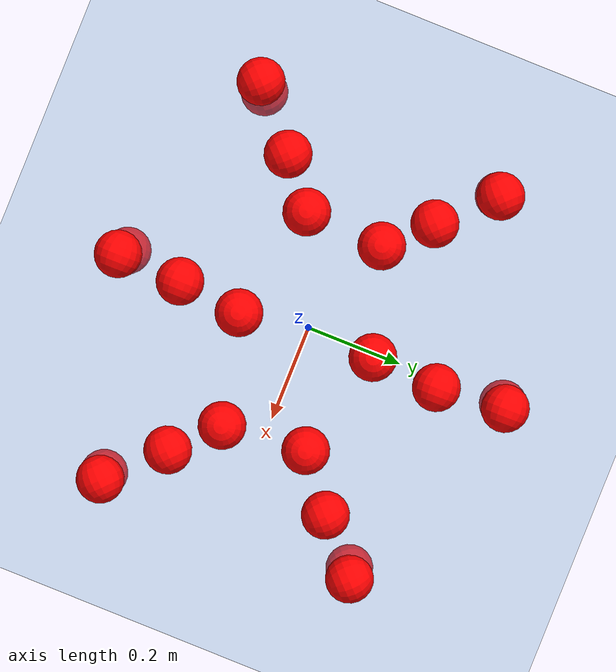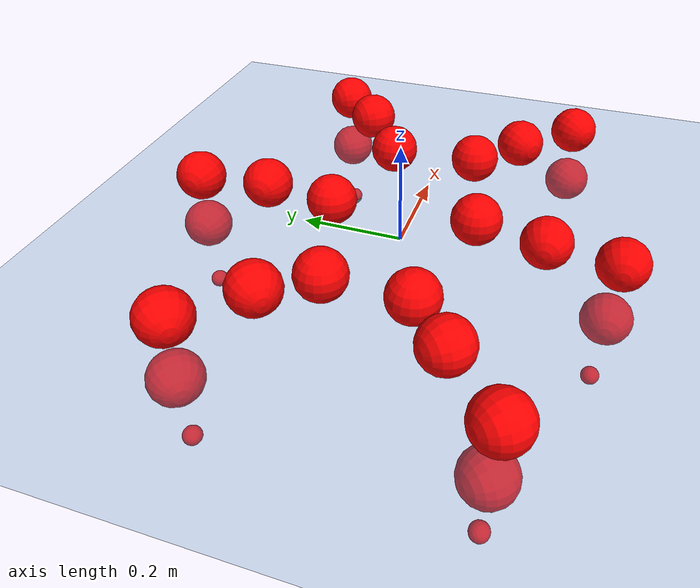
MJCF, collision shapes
<mujoco model="Golem">
  <compiler angle="radian" assetdir="assets" balanceinertia="true" inertiafromgeom="false"/>

  <option timestep="0.005" density="1.2" viscosity="2e-05"/>

  <size nkey="1"/>

  <visual>
    <quality shadowsize="8192"/>
    <map shadowclip="0.5"/>
  </visual>

  <default>
    <default class="/">
      <joint armature="0.01" damping="0.01" frictionloss="0.01"/>
      <geom contype="0" conaffinity="0" group="1" solref="-1000 -80"/>
      <site size="0.01 0.005 0.005" group="5"/>
      <general forcelimited="true" biastype="affine" gainprm="25" biasprm="0 -25 -0.5"/>
      <default class="visual">
        <geom type="mesh" group="2"/>
      </default>
      <default class="collision">
        <geom group="3"/>
      </default>
      <default class="foot">
        <geom size="0.01 0 0" condim="6" group="4" priority="1" solimp="0.015 1 0.01"/>
      </default>
      <default class="reward_collision_sphere">
        <geom group="5" rgba="1 0 0 1"/>
      </default>
    </default>
  </default>

  <asset>
    <texture type="skybox" colorspace="auto" name="//unnamed_texture_0" builtin="gradient" rgb1="0.95 0.95 0.95" rgb2="0.95 0.95 0.95" width="100" height="600"/>
    <texture type="2d" colorspace="auto" name="texplane" builtin="checker" rgb1="0.345 0.575 0.748" rgb2="0.345 0.575 0.748" markrgb="1 1 1" width="512" height="512"/>
    <material name="MatPlane" class="/" texture="texplane" texuniform="true" texrepeat="2 2" specular="0.9"/>
    <mesh name="body" class="/" file="body.stl" scale="0.001 0.001 0.001"/>
    <mesh name="coxa" class="/" file="coxa.stl" scale="0.001 0.001 0.001"/>
    <mesh name="femur" class="/" file="femur.stl" scale="0.001 0.001 0.001"/>
    <mesh name="tibia" class="/" file="tibia.stl" scale="0.001 0.001 0.001"/>
    <mesh name="tarsus" class="/" file="tarsus.stl" scale="0.001 0.001 0.001"/>
  </asset>

  <worldbody>
    <geom name="floor" class="/" size="100 100 0.125" type="plane" group="0" material="MatPlane"/>
    <light name="toplight_shadow" class="/" pos="0 0 5" dir="0.0990148 0.0990148 -0.990148" type="directional" ambient="0.04 0.04 0.04" diffuse="0.55 0.55 0.55" specular="0.12 0.12 0.12"/>
    <light name="toplight_fill" class="/" pos="0 0 5" dir="0.0990148 0.0990148 -0.990148" type="directional" castshadow="false" ambient="0.04 0.04 0.04" diffuse="0.3 0.3 0.3" specular="0.08 0.08 0.08"/>
    <body name="trunk" pos="0.0102276 0.00104221 -0.000330906" quat="0.999977 0.000482257 0.00642699 0.00221997">
      <inertial pos="0.00299128 -0.0147985 -0.0135426" quat="0.999196 -0.0103476 0.038722 -0.000940305" mass="7.3184" diaginertia="0.0659666 0.036225 0.00838898"/>
      <joint name="//unnamed_joint_0" type="free"/>
      <geom name="//unnamed_geom_1" class="/" pos="0 0 0.0605919" quat="1 0 0 0" type="mesh" rgba="0.9 0.9 0.9 1" mesh="body"/>
      <site name="imu" class="/" pos="0.182267 -0.0584385 0.131575" size="0.0122639"/>
      <camera name="track" class="/" pos="0 -2.60829 0" quat="0.707107 0.707107 0 0" mode="trackcom"/>
      <camera name="ego_camera" class="/" pos="0.185676 0 0.0946748" quat="-0.5 -0.5 0.5 0.5"/>
      <body name="coxa_RR" pos="-0.255076 -0.120241 0.0566581" quat="0.386531 0.00336699 0.0029222 -0.922265">
        <inertial pos="-0.00908758 -0.00651474 -0.0069397" quat="0.997178 0.00272967 0.0420383 -0.0621441" mass="0.254235" diaginertia="0.0490883 0.0294885 0.00676015"/>
        <joint name="coxa_joint_RR" class="/" pos="0 0 0" axis="-0.00147835 0.0044762 -0.999989" range="-3.14584 3.43692" armature="0.00330474" damping="0" frictionloss="0.0114896"/>
        <geom name="//unnamed_geom_2" class="/" type="mesh" rgba="0.2 0.2 0.2 1" mesh="coxa"/>
        <geom name="//unnamed_geom_3" class="reward_collision_sphere" size="0.0490556" pos="-0.0428484 0 0"/>
        <body name="femur_RR" pos="0.078291 -0.0125369 0.00653054" quat="0.503513 -0.498826 0.497686 0.499956">
          <inertial pos="-0.0130497 -0.00637397 -0.000450745" quat="0.99801 -0.0456909 -0.0236818 0.0364221" mass="0.384688" diaginertia="0.0610253 0.038911 0.00767651"/>
          <joint name="femur_joint_RR" class="/" pos="0 0 0" axis="-0.00543677 -0.00339676 -0.999979" range="-3.30572 3.31592" armature="0.0113863" damping="0.071144" frictionloss="0.00838328"/>
          <geom name="//unnamed_geom_4" class="/" type="mesh" rgba="0.9 0.9 0.9 1" mesh="femur"/>
          <geom name="//unnamed_geom_5" class="reward_collision_sphere" size="0.0490556"/>
          <body name="tibia_RR" pos="-0.00377643 -0.154869 -0.00881809" quat="0.00267598 0.999992 -0.000168545 -0.00281611">
            <inertial pos="0.0104961 -0.00119432 -0.000630032" quat="0.999475 -0.00847582 0.0310422 -0.00368293" mass="0.302811" diaginertia="0.0553846 0.038509 0.00664914"/>
            <joint name="tibia_joint_RR" class="/" pos="0 0 0" axis="-0.0355619 -0.0451884 0.998345" range="-3.01875 3.12913" armature="0.0131706" damping="0.019704" frictionloss="0.0125912"/>
            <geom name="//unnamed_geom_6" class="/" type="mesh" rgba="0.2 0.2 0.2 1" mesh="tibia"/>
            <geom name="//unnamed_geom_7" class="reward_collision_sphere" size="0.0490556"/>
            <body name="tarsus_RR" pos="0.137046 -0.00969539 -0.000274625" quat="0.999991 0.00336086 0.0022249 -0.0014809">
              <inertial pos="0.0876846 0.00245713 0.00648434" quat="0.499691 0.499601 0.496757 0.503924" mass="0.30993" diaginertia="0.051358 0.0317465 0.00633126"/>
              <joint name="tarsus_joint_RR" class="/" pos="0 0 0" axis="0.00594615 0.01258 0.999903" range="-3.15689 3.14769" armature="0.011226" damping="0.0199898" frictionloss="0.0190679"/>
              <geom name="//unnamed_geom_8" class="/" type="mesh" rgba="0.9 0.9 0.9 1" mesh="tarsus"/>
              <geom name="foot_1" class="foot" size="0.0130625" pos="0.159967 0 0" quat="0 -0.707107 0 0.707107"/>
              <geom name="//unnamed_geom_10" class="reward_collision_sphere" size="0.0490556"/>
              <geom name="//unnamed_geom_11" class="reward_collision_sphere" size="0.0183959" pos="0.15354 0 0"/>
              <site name="foot_1" class="foot" pos="0.159967 0 0" quat="0 -0.707107 0 0.707107" size="0.0122639"/>
            </body>
          </body>
        </body>
      </body>
      <body name="coxa_RM" pos="0.0130718 -0.18444 0.0607763" quat="0.705415 0.000606522 -0.000963875 -0.708793">
        <inertial pos="0.0126737 -0.000233912 0.00336053" quat="0.999997 -0.00223213 -0.000926321 -0.000747263" mass="0.313481" diaginertia="0.0540687 0.0286768 0.00638233"/>
        <joint name="coxa_joint_RM" class="/" pos="0 0 0" axis="-0.0021069 0.00195194 -0.999996" range="-3.35855 3.1136" armature="0.00560746" damping="0" frictionloss="0.0118771"/>
        <geom name="//unnamed_geom_12" class="/" type="mesh" rgba="0.2 0.2 0.2 1" mesh="coxa"/>
        <geom name="//unnamed_geom_13" class="reward_collision_sphere" size="0.0490556" pos="-0.0428484 0 0"/>
        <body name="femur_RM" pos="0.0913013 -0.0142636 -0.0125206" quat="0.497634 -0.502292 0.501666 0.498392">
          <inertial pos="-0.00151096 0.00801079 -0.0058457" quat="0.997455 0.0120284 0.0648578 -0.027068" mass="0.400108" diaginertia="0.076737 0.0447484 0.00944237"/>
          <joint name="femur_joint_RM" class="/" pos="0 0 0" axis="0.00229631 0.0072124 -0.999971" range="-2.84817 3.22513" armature="0.0122598" damping="0" frictionloss="0.0120142"/>
          <geom name="//unnamed_geom_14" class="/" type="mesh" rgba="0.9 0.9 0.9 1" mesh="femur"/>
          <geom name="//unnamed_geom_15" class="reward_collision_sphere" size="0.0490556"/>
          <body name="tibia_RM" pos="0.0124324 -0.137384 -0.0046297" quat="0.00282411 0.999973 0.0027653 -0.00624593">
            <inertial pos="0.00986889 -0.000586872 0.00410491" quat="0.99858 -0.0423094 -0.0231563 0.0226292" mass="0.36476" diaginertia="0.060277 0.0444029 0.00914809"/>
            <joint name="tibia_joint_RM" class="/" pos="0 0 0" axis="0.00386382 -0.0226073 0.999737" stiffness="0.065249" range="-3.12954 3.15865" armature="0.0134738" damping="0.0535477" frictionloss="0.014793"/>
            <geom name="//unnamed_geom_16" class="/" type="mesh" rgba="0.2 0.2 0.2 1" mesh="tibia"/>
            <geom name="//unnamed_geom_17" class="reward_collision_sphere" size="0.0490556"/>
            <body name="tarsus_RM" pos="0.122508 -0.00511478 0.0107312" quat="0.99998 0.00432971 -0.00204972 -0.00418097">
              <inertial pos="0.084972 -0.00248089 -0.000235896" quat="0.476887 0.503818 0.507882 0.510688" mass="0.373955" diaginertia="0.0579985 0.0382869 0.00627606"/>
              <joint name="tarsus_joint_RM" class="/" pos="0 0 0" axis="-0.0481104 -0.0353608 0.998216" range="-2.94327 2.84436" armature="0.0176808" damping="0.00468285" frictionloss="0.0212898"/>
              <geom name="//unnamed_geom_18" class="/" type="mesh" rgba="0.9 0.9 0.9 1" mesh="tarsus"/>
              <geom name="foot_2" class="foot" size="0.0101319" pos="0.159967 0 0" quat="0 -0.707107 0 0.707107"/>
              <geom name="//unnamed_geom_20" class="reward_collision_sphere" size="0.0490556"/>
              <geom name="//unnamed_geom_21" class="reward_collision_sphere" size="0.0183959" pos="0.15354 0 0"/>
              <site name="foot_2" class="foot" pos="0.159967 0 0" quat="0 -0.707107 0 0.707107" size="0.0122639"/>
            </body>
          </body>
        </body>
      </body>
      <body name="coxa_RF" pos="0.266979 -0.11978 0.0597558" quat="0.925559 -0.00448203 0.000231101 -0.378578">
        <inertial pos="-0.0130167 -0.0133129 -0.00110817" quat="1 6.69922e-05 -0.000396278 0.000835209" mass="0.363111" diaginertia="0.0631038 0.0426067 0.00778292"/>
        <joint name="coxa_joint_RF" class="/" pos="0 0 0" axis="0.00278003 -0.0327806 -0.999459" stiffness="0.0728925" range="-3.28117 3.40661" armature="0.01612" damping="0" frictionloss="0.0111517"/>
        <geom name="//unnamed_geom_22" class="/" type="mesh" rgba="0.2 0.2 0.2 1" mesh="coxa"/>
        <geom name="//unnamed_geom_23" class="reward_collision_sphere" size="0.0490556" pos="-0.0428484 0 0"/>
        <body name="femur_RF" pos="0.0764744 0.000762566 0.00507328" quat="0.495574 -0.503633 0.501913 0.498842">
          <inertial pos="-2.84379e-05 0.00837701 -0.0142287" quat="0.998231 -0.0128684 -0.0541489 -0.0209207" mass="0.384229" diaginertia="0.0687717 0.0442392 0.0104314"/>
          <joint name="femur_joint_RF" class="/" pos="0 0 0" axis="-0.06273 -0.0365782 -0.99736" range="-3.11321 3.30319" armature="0.00253841" damping="0.0084442" frictionloss="0.00572543"/>
          <geom name="//unnamed_geom_24" class="/" type="mesh" rgba="0.9 0.9 0.9 1" mesh="femur"/>
          <geom name="//unnamed_geom_25" class="reward_collision_sphere" size="0.0490556"/>
          <body name="tibia_RF" pos="0.00352449 -0.148293 -0.00182368" quat="0.00205471 0.999992 -0.0032746 -0.000274595">
            <inertial pos="-0.00235851 -0.000511185 -0.000583007" quat="0.998494 -0.0101936 0.0277959 0.0461772" mass="0.435413" diaginertia="0.0655078 0.0432176 0.00702656"/>
            <joint name="tibia_joint_RF" class="/" pos="0 0 0" axis="0.0122287 -0.0095541 0.99988" stiffness="0.0434419" range="-3.14982 2.87219" armature="0.0109909" damping="0.0185894" frictionloss="0.00893401"/>
            <geom name="//unnamed_geom_26" class="/" type="mesh" rgba="0.2 0.2 0.2 1" mesh="tibia"/>
            <geom name="//unnamed_geom_27" class="reward_collision_sphere" size="0.0490556"/>
            <body name="tarsus_RF" pos="0.126345 0.00020213 0.00238089" quat="0.999974 -0.00258016 -0.00401256 -0.00539642">
              <inertial pos="0.0905531 0.000146618 -0.00149688" quat="0.483901 0.477859 0.499114 0.537006" mass="0.415701" diaginertia="0.0668744 0.0421494 0.00975724"/>
              <joint name="tarsus_joint_RF" class="/" pos="0 0 0" axis="0.00486696 0.0236559 0.999708" range="-3.14375 3.149" armature="0.0125023" damping="0.00869634" frictionloss="0.00687626"/>
              <geom name="//unnamed_geom_28" class="/" type="mesh" rgba="0.9 0.9 0.9 1" mesh="tarsus"/>
              <geom name="foot_3" class="foot" size="0.00660106" pos="0.159967 0 0" quat="0 -0.707107 0 0.707107"/>
              <geom name="//unnamed_geom_30" class="reward_collision_sphere" size="0.0490556"/>
              <geom name="//unnamed_geom_31" class="reward_collision_sphere" size="0.0183959" pos="0.15354 0 0"/>
              <site name="foot_3" class="foot" pos="0.159967 0 0" quat="0 -0.707107 0 0.707107" size="0.0122639"/>
            </body>
          </body>
        </body>
      </body>
      <body name="coxa_LR" pos="-0.247359 0.105972 0.0551101" quat="0.385679 0.00522771 -0.000179106 0.922618">
        <inertial pos="0.000512245 -9.31224e-05 -0.00516638" quat="0.999998 -0.000406239 0.00166928 0.00131002" mass="0.40285" diaginertia="0.0686112 0.0369007 0.00902842"/>
        <joint name="coxa_joint_LR" class="/" pos="0 0 0" axis="0.014185 -0.0591117 -0.998151" stiffness="0.0314052" range="-3.37001 3.13567" armature="0.0162526" damping="0" frictionloss="0.0126986"/>
        <geom name="//unnamed_geom_32" class="/" type="mesh" rgba="0.2 0.2 0.2 1" mesh="coxa"/>
        <geom name="//unnamed_geom_33" class="reward_collision_sphere" size="0.0490556" pos="-0.0428484 0 0"/>
        <body name="femur_LR" pos="0.0718501 -0.000739871 0.013054" quat="0.498953 -0.501201 0.501702 0.498135">
          <inertial pos="-0.000632267 0.00204468 -0.00742691" quat="0.999499 0.0180891 0.0236396 0.0107942" mass="0.341127" diaginertia="0.0535596 0.0412824 0.00673958"/>
          <joint name="femur_joint_LR" class="/" pos="0 0 0" axis="0.0100234 -0.00881547 0.999911" stiffness="0.0492516" range="-2.88515 2.88902" armature="0.0109861" damping="0.0704897" frictionloss="0.0151925"/>
          <geom name="//unnamed_geom_34" class="/" type="mesh" rgba="0.9 0.9 0.9 1" mesh="femur"/>
          <geom name="//unnamed_geom_35" class="reward_collision_sphere" size="0.0490556"/>
          <body name="tibia_LR" pos="0.0034773 -0.143085 -0.000330015" quat="0.00141107 0.999997 0.00140537 -0.0010768">
            <inertial pos="0.0146294 0.00494482 0.0132468" quat="0.999937 0.00193035 -0.00890764 -0.00649432" mass="0.36798" diaginertia="0.0616186 0.032905 0.00873179"/>
            <joint name="tibia_joint_LR" class="/" pos="0 0 0" axis="-1.6375e-05 2.09008e-05 -1" stiffness="0.0449544" range="-3.40371 2.92163" armature="0.01723" damping="0" frictionloss="0.0157699"/>
            <geom name="//unnamed_geom_36" class="/" type="mesh" rgba="0.2 0.2 0.2 1" mesh="tibia"/>
            <geom name="//unnamed_geom_37" class="reward_collision_sphere" size="0.0490556"/>
            <body name="tarsus_LR" pos="0.130681 0.00728718 -0.00469245" quat="1 0.000318447 0.000216813 -0.000402619">
              <inertial pos="0.0823138 0.00189342 -0.00462787" quat="0.498818 0.500343 0.500881 0.499955" mass="0.338198" diaginertia="0.0552098 0.0280257 0.00638902"/>
              <joint name="tarsus_joint_LR" class="/" pos="0 0 0" axis="0.06683 -0.00772673 -0.997734" range="-3.09182 3.35517" armature="0.0142901" damping="0.0281879" frictionloss="0.0056877"/>
              <geom name="//unnamed_geom_38" class="/" type="mesh" rgba="0.9 0.9 0.9 1" mesh="tarsus"/>
              <geom name="foot_4" class="foot" size="0.0100112" pos="0.159967 0 0" quat="0.707107 0 -0.707107 0"/>
              <geom name="//unnamed_geom_40" class="reward_collision_sphere" size="0.0490556"/>
              <geom name="//unnamed_geom_41" class="reward_collision_sphere" size="0.0183959" pos="0.15354 0 0"/>
              <site name="foot_4" class="foot" pos="0.159967 0 0" quat="0.707107 0 -0.707107 0" size="0.0122639"/>
            </body>
          </body>
        </body>
      </body>
      <body name="coxa_LM" pos="-0.00241519 0.184391 0.0576562" quat="0.705807 -0.00132969 0.00257432 0.708398">
        <inertial pos="-0.0131627 -0.0143638 -0.00521143" quat="0.999998 0.000535662 0.00160235 -0.00108996" mass="0.364938" diaginertia="0.0550281 0.0369566 0.00737279"/>
        <joint name="coxa_joint_LM" class="/" pos="0 0 0" axis="-0.0124488 -0.0125017 -0.999844" stiffness="0.0536121" range="-3.31592 3.31677" armature="0.00457619" damping="0.0295036" frictionloss="0.00701004"/>
        <geom name="//unnamed_geom_42" class="/" type="mesh" rgba="0.2 0.2 0.2 1" mesh="coxa"/>
        <geom name="//unnamed_geom_43" class="reward_collision_sphere" size="0.0490556" pos="-0.0428484 0 0"/>
        <body name="femur_LM" pos="0.0975661 -0.00950592 0.00643875" quat="0.501802 -0.501175 0.494019 0.502955">
          <inertial pos="0.00949834 -0.00850292 0.00271003" quat="0.998525 0.00316674 -0.0500249 0.0208578" mass="0.351186" diaginertia="0.0486998 0.0400249 0.00684811"/>
          <joint name="femur_joint_LM" class="/" pos="0 0 0" axis="-0.0163153 -0.0175976 0.999712" range="-3.2637 3.12729" armature="0.0209351" damping="0.0346061" frictionloss="0.0117681"/>
          <geom name="//unnamed_geom_44" class="/" type="mesh" rgba="0.9 0.9 0.9 1" mesh="femur"/>
          <geom name="//unnamed_geom_45" class="reward_collision_sphere" size="0.0490556"/>
          <body name="tibia_LM" pos="0.00276029 -0.1441 0.0102739" quat="-0.000146177 1 0.000221223 -0.000176557">
            <inertial pos="-0.00509605 -0.0124091 -0.00735438" quat="0.999626 -0.00965406 -0.0223442 0.0124329" mass="0.386818" diaginertia="0.0680631 0.0357703 0.00697888"/>
            <joint name="tibia_joint_LM" class="/" pos="0 0 0" axis="0.0420575 0.0141971 -0.999014" stiffness="0.0222679" range="-3.02748 2.93331" armature="0.0107988" damping="0.0510702" frictionloss="0.0176738"/>
            <geom name="//unnamed_geom_46" class="/" type="mesh" rgba="0.2 0.2 0.2 1" mesh="tibia"/>
            <geom name="//unnamed_geom_47" class="reward_collision_sphere" size="0.0490556"/>
            <body name="tarsus_LM" pos="0.11546 0.00209311 -0.00507284" quat="1 0.000226472 0.000581955 -0.000155785">
              <inertial pos="0.0883461 0.00143457 -0.000422511" quat="0.526171 0.510881 0.476281 0.485079" mass="0.25517" diaginertia="0.0456267 0.0312455 0.00739698"/>
              <joint name="tarsus_joint_LM" class="/" pos="0 0 0" axis="0.0194689 -0.0275208 -0.999432" range="-3.14675 3.33427" armature="0.0114888" damping="0" frictionloss="0.0120414"/>
              <geom name="//unnamed_geom_48" class="/" type="mesh" rgba="0.9 0.9 0.9 1" mesh="tarsus"/>
              <geom name="foot_5" class="foot" size="0.00981888" pos="0.159967 0 0" quat="0.707107 0 -0.707107 0"/>
              <geom name="//unnamed_geom_50" class="reward_collision_sphere" size="0.0490556"/>
              <geom name="//unnamed_geom_51" class="reward_collision_sphere" size="0.0183959" pos="0.15354 0 0"/>
              <site name="foot_5" class="foot" pos="0.159967 0 0" quat="0.707107 0 -0.707107 0" size="0.0122639"/>
            </body>
          </body>
        </body>
      </body>
      <body name="coxa_LF" pos="0.251701 0.115383 0.0606249" quat="0.923852 -3.2056e-05 -0.000390659 0.382749">
        <inertial pos="0.00159499 -0.00411646 -0.000135404" quat="0.999999 -0.000649543 0.000985671 0.00118958" mass="0.438205" diaginertia="0.0692779 0.0387109 0.00792908"/>
        <joint name="coxa_joint_LF" class="/" pos="0 0 0" axis="-0.0560965 -0.0377735 -0.997711" range="-3.16005 3.27907" armature="0.00864081" damping="0.0258887" frictionloss="0.0117337"/>
        <geom name="//unnamed_geom_52" class="/" type="mesh" rgba="0.2 0.2 0.2 1" mesh="coxa"/>
        <geom name="//unnamed_geom_53" class="reward_collision_sphere" size="0.0490556" pos="-0.0428484 0 0"/>
        <body name="femur_LF" pos="0.0906074 -0.01448 0.0149847" quat="0.5007 -0.499133 0.498992 0.501171">
          <inertial pos="0.0119389 -0.00699922 0.00439669" quat="1 -0.000770155 -0.000327202 -0.000164595" mass="0.354217" diaginertia="0.068289 0.0473454 0.00836381"/>
          <joint name="femur_joint_LF" class="/" pos="0 0 0" axis="-0.0486758 -0.0319951 0.998302" range="-3.11829 3.39534" armature="0.0190625" damping="0.000877752" frictionloss="0.0101342"/>
          <geom name="//unnamed_geom_54" class="/" type="mesh" rgba="0.9 0.9 0.9 1" mesh="femur"/>
          <geom name="//unnamed_geom_55" class="reward_collision_sphere" size="0.0490556"/>
          <body name="tibia_LF" pos="0.0132318 -0.138321 -0.00716117" quat="-0.00181553 0.999997 -0.00123819 0.000422418">
            <inertial pos="-0.00502002 -0.00732311 -0.00218751" quat="0.99791 0.00556781 -0.0630893 -0.0128476" mass="0.37909" diaginertia="0.0596781 0.0351346 0.00697399"/>
            <joint name="tibia_joint_LF" class="/" pos="0 0 0" axis="-0.00726964 -0.00407358 -0.999965" stiffness="0.000733008" range="-3.12838 3.29928" armature="0.0214279" damping="0.0156978" frictionloss="0.0115505"/>
            <geom name="//unnamed_geom_56" class="/" type="mesh" rgba="0.2 0.2 0.2 1" mesh="tibia"/>
            <geom name="//unnamed_geom_57" class="reward_collision_sphere" size="0.0490556"/>
            <body name="tarsus_LF" pos="0.126639 -0.0074568 -0.00412433" quat="0.999973 -0.00626579 -0.00382658 0.000509171">
              <inertial pos="0.0748201 0.0124607 -0.000596767" quat="0.500455 0.498968 0.49963 0.500945" mass="0.416183" diaginertia="0.0713747 0.0431672 0.00893627"/>
              <joint name="tarsus_joint_LF" class="/" pos="0 0 0" axis="0.0160166 -0.0597014 -0.998088" range="-3.38021 3.1079" armature="0.0109029" damping="0" frictionloss="0.0120289"/>
              <geom name="//unnamed_geom_58" class="/" type="mesh" rgba="0.9 0.9 0.9 1" mesh="tarsus"/>
              <geom name="foot_6" class="foot" size="0.0172972" pos="0.159967 0 0" quat="0.707107 0 -0.707107 0"/>
              <geom name="//unnamed_geom_60" class="reward_collision_sphere" size="0.0490556"/>
              <geom name="//unnamed_geom_61" class="reward_collision_sphere" size="0.0183959" pos="0.15354 0 0"/>
              <site name="foot_6" class="foot" pos="0.159967 0 0" quat="0.707107 0 -0.707107 0" size="0.0122639"/>
            </body>
          </body>
        </body>
      </body>
    </body>
  </worldbody>

  <contact>
    <pair class="/" geom1="floor" geom2="foot_1" name="//unnamed_contact_0"/>
    <pair class="/" geom1="floor" geom2="foot_2" name="//unnamed_contact_1"/>
    <pair class="/" geom1="floor" geom2="foot_3" name="//unnamed_contact_2"/>
    <pair class="/" geom1="floor" geom2="foot_4" name="//unnamed_contact_3"/>
    <pair class="/" geom1="floor" geom2="foot_5" name="//unnamed_contact_4"/>
    <pair class="/" geom1="floor" geom2="foot_6" name="//unnamed_contact_5"/>
  </contact>

  <actuator>
    <general name="coxa_joint_RR" class="/" joint="coxa_joint_RR" forcerange="-8.53917 8.53917" gainprm="23.5407" biasprm="0 -23.5407 -0.726661"/>
    <general name="femur_joint_RR" class="/" joint="femur_joint_RR" forcerange="-8.94189 8.94189" gainprm="23.5407" biasprm="0 -23.5407 -0.726661"/>
    <general name="tibia_joint_RR" class="/" joint="tibia_joint_RR" forcerange="-8.92204 8.92204" gainprm="23.5407" biasprm="0 -23.5407 -0.726661"/>
    <general name="tarsus_joint_RR" class="/" joint="tarsus_joint_RR" forcerange="-10.4086 10.4086" gainprm="23.5407" biasprm="0 -23.5407 -0.726661"/>
    <general name="coxa_joint_RM" class="/" joint="coxa_joint_RM" forcerange="-10.567 10.567" gainprm="23.5407" biasprm="0 -23.5407 -0.726661"/>
    <general name="femur_joint_RM" class="/" joint="femur_joint_RM" forcerange="-12.6144 12.6144" gainprm="23.5407" biasprm="0 -23.5407 -0.726661"/>
    <general name="tibia_joint_RM" class="/" joint="tibia_joint_RM" forcerange="-9.13503 9.13503" gainprm="23.5407" biasprm="0 -23.5407 -0.726661"/>
    <general name="tarsus_joint_RM" class="/" joint="tarsus_joint_RM" forcerange="-7.09421 7.09421" gainprm="23.5407" biasprm="0 -23.5407 -0.726661"/>
    <general name="coxa_joint_RF" class="/" joint="coxa_joint_RF" forcerange="-12.8084 12.8084" gainprm="23.5407" biasprm="0 -23.5407 -0.726661"/>
    <general name="femur_joint_RF" class="/" joint="femur_joint_RF" forcerange="-12.4491 12.4491" gainprm="23.5407" biasprm="0 -23.5407 -0.726661"/>
    <general name="tibia_joint_RF" class="/" joint="tibia_joint_RF" forcerange="-5.60506 5.60506" gainprm="23.5407" biasprm="0 -23.5407 -0.726661"/>
    <general name="tarsus_joint_RF" class="/" joint="tarsus_joint_RF" forcerange="-6.73464 6.73464" gainprm="23.5407" biasprm="0 -23.5407 -0.726661"/>
    <general name="coxa_joint_LR" class="/" joint="coxa_joint_LR" forcerange="-9.4819 9.4819" gainprm="23.5407" biasprm="0 -23.5407 -0.726661"/>
    <general name="femur_joint_LR" class="/" joint="femur_joint_LR" forcerange="-11.6004 11.6004" gainprm="23.5407" biasprm="0 -23.5407 -0.726661"/>
    <general name="tibia_joint_LR" class="/" joint="tibia_joint_LR" forcerange="-13.465 13.465" gainprm="23.5407" biasprm="0 -23.5407 -0.726661"/>
    <general name="tarsus_joint_LR" class="/" joint="tarsus_joint_LR" forcerange="-4.18994 4.18994" gainprm="23.5407" biasprm="0 -23.5407 -0.726661"/>
    <general name="coxa_joint_LM" class="/" joint="coxa_joint_LM" forcerange="-6.43825 6.43825" gainprm="23.5407" biasprm="0 -23.5407 -0.726661"/>
    <general name="femur_joint_LM" class="/" joint="femur_joint_LM" forcerange="-9.33192 9.33192" gainprm="23.5407" biasprm="0 -23.5407 -0.726661"/>
    <general name="tibia_joint_LM" class="/" joint="tibia_joint_LM" forcerange="-8.5619 8.5619" gainprm="23.5407" biasprm="0 -23.5407 -0.726661"/>
    <general name="tarsus_joint_LM" class="/" joint="tarsus_joint_LM" forcerange="-11.0354 11.0354" gainprm="23.5407" biasprm="0 -23.5407 -0.726661"/>
    <general name="coxa_joint_LF" class="/" joint="coxa_joint_LF" forcerange="-8.53258 8.53258" gainprm="23.5407" biasprm="0 -23.5407 -0.726661"/>
    <general name="femur_joint_LF" class="/" joint="femur_joint_LF" forcerange="-9.03727 9.03727" gainprm="23.5407" biasprm="0 -23.5407 -0.726661"/>
    <general name="tibia_joint_LF" class="/" joint="tibia_joint_LF" forcerange="-7.1047 7.1047" gainprm="23.5407" biasprm="0 -23.5407 -0.726661"/>
    <general name="tarsus_joint_LF" class="/" joint="tarsus_joint_LF" forcerange="-9.35465 9.35465" gainprm="23.5407" biasprm="0 -23.5407 -0.726661"/>
  </actuator>

  <sensor>
    <gyro site="imu" name="imu_angular_velocity"/>
    <velocimeter site="imu" name="imu_linear_velocity"/>
    <framelinvel objtype="site" objname="foot_1" name="foot_1_global_linear_velocity"/>
    <framelinvel objtype="site" objname="foot_2" name="foot_2_global_linear_velocity"/>
    <framelinvel objtype="site" objname="foot_3" name="foot_3_global_linear_velocity"/>
    <framelinvel objtype="site" objname="foot_4" name="foot_4_global_linear_velocity"/>
    <framelinvel objtype="site" objname="foot_5" name="foot_5_global_linear_velocity"/>
    <framelinvel objtype="site" objname="foot_6" name="foot_6_global_linear_velocity"/>
  </sensor>

  <keyframe>
    <key name="home" qpos="0 0 0.1457 1 0 0 0 0 0 0 0 0 0 0 0 0 0 0 0 0 0 0 0 0 0 0 0 0 0 0 0"/>
  </keyframe>
</mujoco>
